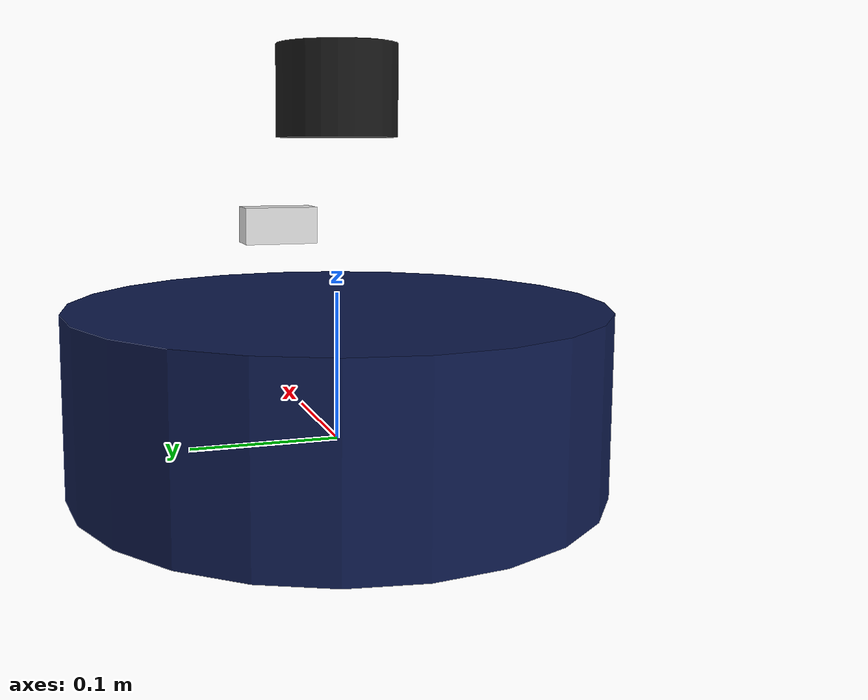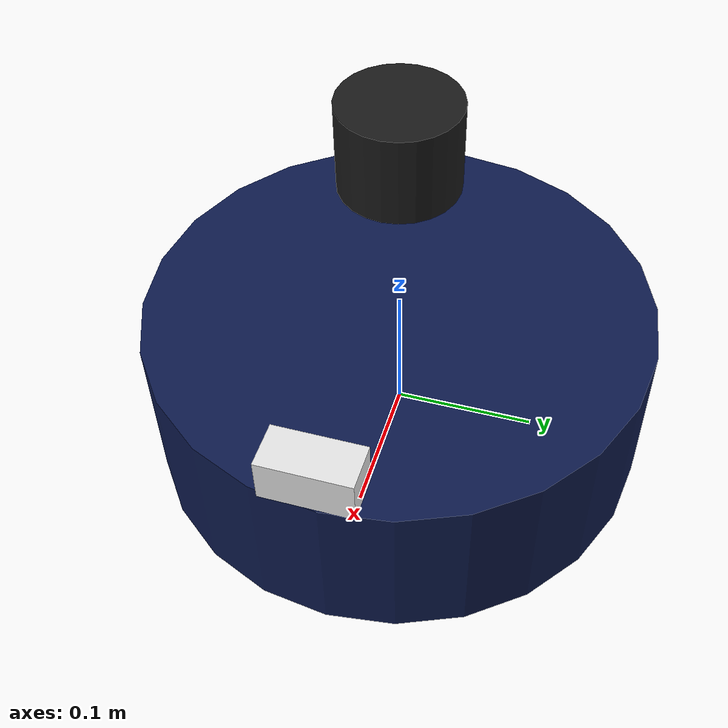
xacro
<?xml version="1.0"?>
<robot name="warehouse_robot" xmlns:xacro="http://www.ros.org/wiki/xacro">

  <!-- ═══════════════════════════════════════════════════
       PARAMETERS
  ═══════════════════════════════════════════════════ -->
  <xacro:property name="robot_mass"     value="10.0"/>
  <xacro:property name="base_radius"    value="0.18"/>
  <xacro:property name="base_height"    value="0.12"/>
  <xacro:property name="wheel_radius"   value="0.033"/>
  <xacro:property name="wheel_width"    value="0.018"/>
  <xacro:property name="wheel_sep"      value="0.28"/>
  <xacro:property name="caster_radius"  value="0.015"/>
  <xacro:property name="camera_x"       value="0.18"/>
  <xacro:property name="camera_z"       value="0.10"/>
  <xacro:property name="lidar_z"        value="0.20"/>
  <xacro:property name="PI"             value="3.14159265"/>

  <!-- ═══════════════════════════════════════════════════
       MATERIALS
  ═══════════════════════════════════════════════════ -->
  <material name="dark_blue">
    <color rgba="0.05 0.1 0.3 1.0"/>
  </material>
  <material name="black">
    <color rgba="0.1 0.1 0.1 1.0"/>
  </material>
  <material name="grey">
    <color rgba="0.5 0.5 0.5 1.0"/>
  </material>
  <material name="white">
    <color rgba="0.9 0.9 0.9 1.0"/>
  </material>

  <!-- ═══════════════════════════════════════════════════
       BASE FOOTPRINT (origin frame)
  ═══════════════════════════════════════════════════ -->
  <link name="base_footprint"/>

  <joint name="base_joint" type="fixed">
    <parent link="base_footprint"/>
    <child  link="base_link"/>
    <origin xyz="0 0 ${wheel_radius}" rpy="0 0 0"/>
  </joint>

  <!-- ═══════════════════════════════════════════════════
       BASE LINK
  ═══════════════════════════════════════════════════ -->
  <link name="base_link">
    <visual>
      <geometry>
        <cylinder radius="${base_radius}" length="${base_height}"/>
      </geometry>
      <material name="dark_blue"/>
    </visual>
    <collision>
      <geometry>
        <cylinder radius="${base_radius}" length="${base_height}"/>
      </geometry>
    </collision>
    <inertial>
      <mass value="${robot_mass}"/>
      <inertia
        ixx="${(1.0/12.0)*robot_mass*(3*base_radius*base_radius + base_height*base_height)}"
        ixy="0" ixz="0"
        iyy="${(1.0/12.0)*robot_mass*(3*base_radius*base_radius + base_height*base_height)}"
        iyz="0"
        izz="${0.5*robot_mass*base_radius*base_radius}"/>
    </inertial>
  </link>

  <!-- ═══════════════════════════════════════════════════
       WHEEL MACRO
  ═══════════════════════════════════════════════════ -->
  <xacro:macro name="wheel" params="prefix y_reflect">
    <link name="${prefix}_wheel_link">
      <visual>
        <geometry>
          <cylinder radius="${wheel_radius}" length="${wheel_width}"/>
        </geometry>
        <material name="black"/>
      </visual>
      <collision>
        <geometry>
          <cylinder radius="${wheel_radius}" length="${wheel_width}"/>
        </geometry>
      </collision>
      <inertial>
        <mass value="0.5"/>
        <inertia
          ixx="${(1.0/12.0)*0.5*(3*wheel_radius*wheel_radius + wheel_width*wheel_width)}"
          ixy="0" ixz="0"
          iyy="${(1.0/12.0)*0.5*(3*wheel_radius*wheel_radius + wheel_width*wheel_width)}"
          iyz="0"
          izz="${0.5*0.5*wheel_radius*wheel_radius}"/>
      </inertial>
    </link>

    <joint name="${prefix}_wheel_joint" type="continuous">
      <parent link="base_link"/>
      <child  link="${prefix}_wheel_link"/>
      <origin xyz="0 ${y_reflect * wheel_sep/2} ${-base_height/2 + wheel_radius}"
              rpy="${-PI/2} 0 0"/>
      <axis xyz="0 0 1"/>
      <dynamics damping="0.1" friction="0.1"/>
    </joint>
  </xacro:macro>

  <xacro:wheel prefix="left"  y_reflect=" 1"/>
  <xacro:wheel prefix="right" y_reflect="-1"/>

  <!-- ═══════════════════════════════════════════════════
       CASTER WHEEL
  ═══════════════════════════════════════════════════ -->
  <link name="caster_link">
    <visual>
      <geometry><sphere radius="${caster_radius}"/></geometry>
      <material name="grey"/>
    </visual>
    <collision>
      <geometry><sphere radius="${caster_radius}"/></geometry>
    </collision>
    <inertial>
      <mass value="0.1"/>
      <inertia ixx="0.0001" ixy="0" ixz="0" iyy="0.0001" iyz="0" izz="0.0001"/>
    </inertial>
  </link>

  <joint name="caster_joint" type="fixed">
    <parent link="base_link"/>
    <child  link="caster_link"/>
    <origin xyz="${-base_radius + caster_radius} 0 ${-base_height/2 + caster_radius}"
            rpy="0 0 0"/>
  </joint>

  <!-- ═══════════════════════════════════════════════════
       CAMERA MOUNT + LINK
  ═══════════════════════════════════════════════════ -->
  <link name="camera_link">
    <visual>
      <geometry><box size="0.03 0.06 0.03"/></geometry>
      <material name="white"/>
    </visual>
    <collision>
      <geometry><box size="0.03 0.06 0.03"/></geometry>
    </collision>
    <inertial>
      <mass value="0.05"/>
      <inertia ixx="0.0001" ixy="0" ixz="0" iyy="0.0001" iyz="0" izz="0.0001"/>
    </inertial>
  </link>

  <joint name="camera_joint" type="fixed">
    <parent link="base_link"/>
    <child  link="camera_link"/>
    <origin xyz="${camera_x} 0 ${camera_z}" rpy="0 0 0"/>
  </joint>

  <!-- Camera optical frame (standard ROS convention) -->
  <link name="camera_optical_link"/>
  <joint name="camera_optical_joint" type="fixed">
    <parent link="camera_link"/>
    <child  link="camera_optical_link"/>
    <origin xyz="0 0 0" rpy="${-PI/2} 0 ${-PI/2}"/>
  </joint>

  <!-- ═══════════════════════════════════════════════════
       LIDAR LINK
  ═══════════════════════════════════════════════════ -->
  <link name="lidar_link">
    <visual>
      <geometry><cylinder radius="0.04" length="0.06"/></geometry>
      <material name="black"/>
    </visual>
    <collision>
      <geometry><cylinder radius="0.04" length="0.06"/></geometry>
    </collision>
    <inertial>
      <mass value="0.1"/>
      <inertia ixx="0.0001" ixy="0" ixz="0" iyy="0.0001" iyz="0" izz="0.0001"/>
    </inertial>
  </link>

  <joint name="lidar_joint" type="fixed">
    <parent link="base_link"/>
    <child  link="lidar_link"/>
    <origin xyz="0 0 ${lidar_z}" rpy="0 0 0"/>
  </joint>

  <!-- IMU link -->
  <link name="imu_link"/>
  <joint name="imu_joint" type="fixed">
    <parent link="base_link"/>
    <child  link="imu_link"/>
    <origin xyz="0 0 0" rpy="0 0 0"/>
  </joint>

  <!-- ═══════════════════════════════════════════════════
       GAZEBO PLUGINS
  ═══════════════════════════════════════════════════ -->

  <!-- 1. Differential Drive Controller -->
  <gazebo>
    <plugin name="differential_drive_controller"
            filename="libgazebo_ros_diff_drive.so">
      <update_rate>30</update_rate>
      <left_joint>left_wheel_joint</left_joint>
      <right_joint>right_wheel_joint</right_joint>
      <wheel_separation>${wheel_sep}</wheel_separation>
      <wheel_diameter>${2*wheel_radius}</wheel_diameter>
      <max_wheel_torque>20</max_wheel_torque>
      <max_wheel_acceleration>1.0</max_wheel_acceleration>
      <command_topic>cmd_vel</command_topic>
      <publish_odom>true</publish_odom>
      <publish_odom_tf>true</publish_odom_tf>
      <publish_wheel_tf>false</publish_wheel_tf>
      <odometry_topic>odom</odometry_topic>
      <odometry_frame>odom</odometry_frame>
      <robot_base_frame>base_footprint</robot_base_frame>
      <odometry_source>world</odometry_source>
      <ros>
        <remapping>cmd_vel:=cmd_vel</remapping>
        <remapping>odom:=odom</remapping>
      </ros>
    </plugin>
  </gazebo>

  <!-- 2. RGB Camera Plugin -->
  <gazebo reference="camera_link">
    <sensor name="rgb_camera" type="camera">
      <update_rate>30.0</update_rate>
      <always_on>true</always_on>
      <visualize>true</visualize>
      <camera name="rgb_camera">
        <horizontal_fov>1.3962634</horizontal_fov>
        <image>
          <width>640</width>
          <height>480</height>
          <format>R8G8B8</format>
        </image>
        <clip>
          <near>0.05</near>
          <far>8.0</far>
        </clip>
        <noise>
          <type>gaussian</type>
          <mean>0.0</mean>
          <stddev>0.007</stddev>
        </noise>
        <distortion>
          <k1>0.0</k1><k2>0.0</k2><k3>0.0</k3>
          <p1>0.0</p1><p2>0.0</p2>
          <center>0.5 0.5</center>
        </distortion>
      </camera>
      <plugin name="camera_controller" filename="libgazebo_ros_camera.so">
        <ros>
          <remapping>image_raw:=image_raw</remapping>
          <remapping>camera_info:=camera_info</remapping>
        </ros>
        <camera_name>rgb_camera</camera_name>
        <frame_name>camera_optical_link</frame_name>
        <hack_baseline>0.07</hack_baseline>
      </plugin>
    </sensor>

    <!-- Contact sensor for emergency stop -->
    <sensor name="contact_sensor" type="contact">
      <always_on>true</always_on>
      <update_rate>10.0</update_rate>
      <contact>
        <collision>base_link_collision</collision>
      </contact>
      <plugin name="contact_controller" filename="libgazebo_ros_bumper.so">
        <ros>
          <remapping>bumper_states:=contact_states</remapping>
        </ros>
        <frame_name>base_link</frame_name>
      </plugin>
    </sensor>
  </gazebo>

  <!-- 3. 2D LiDAR Plugin (RPLiDAR A1 equivalent) -->
  <gazebo reference="lidar_link">
    <sensor name="lidar" type="ray">
      <always_on>true</always_on>
      <visualize>true</visualize>
      <update_rate>10</update_rate>
      <ray>
        <scan>
          <horizontal>
            <samples>360</samples>
            <resolution>1</resolution>
            <min_angle>-3.14159</min_angle>
            <max_angle> 3.14159</max_angle>
          </horizontal>
        </scan>
        <range>
          <min>0.12</min>
          <max>3.5</max>
          <resolution>0.015</resolution>
        </range>
        <noise>
          <type>gaussian</type>
          <mean>0.0</mean>
          <stddev>0.01</stddev>
        </noise>
      </ray>
      <plugin name="lidar_controller" filename="libgazebo_ros_ray_sensor.so">
        <ros>
          <remapping>~/out:=scan</remapping>
        </ros>
        <output_type>sensor_msgs/LaserScan</output_type>
        <frame_name>lidar_link</frame_name>
      </plugin>
    </sensor>
  </gazebo>

  <!-- 4. IMU Plugin -->
  <gazebo reference="imu_link">
    <sensor name="imu_sensor" type="imu">
      <always_on>true</always_on>
      <update_rate>100</update_rate>
      <visualize>false</visualize>
      <imu>
        <angular_velocity>
          <x><noise type="gaussian"><mean>0.0</mean><stddev>2e-4</stddev></noise></x>
          <y><noise type="gaussian"><mean>0.0</mean><stddev>2e-4</stddev></noise></y>
          <z><noise type="gaussian"><mean>0.0</mean><stddev>2e-4</stddev></noise></z>
        </angular_velocity>
        <linear_acceleration>
          <x><noise type="gaussian"><mean>0.0</mean><stddev>1.7e-2</stddev></noise></x>
          <y><noise type="gaussian"><mean>0.0</mean><stddev>1.7e-2</stddev></noise></y>
          <z><noise type="gaussian"><mean>0.0</mean><stddev>1.7e-2</stddev></noise></z>
        </linear_acceleration>
      </imu>
      <plugin name="imu_controller" filename="libgazebo_ros_imu_sensor.so">
        <ros>
          <remapping>~/out:=imu</remapping>
        </ros>
        <initial_orientation_as_reference>false</initial_orientation_as_reference>
      </plugin>
    </sensor>
  </gazebo>

  <!-- 5. Material colors in Gazebo -->
  <gazebo reference="base_link">
    <material>Gazebo/DarkBlue</material>
    <mu1>0.2</mu1><mu2>0.2</mu2>
  </gazebo>
  <gazebo reference="left_wheel_link">
    <material>Gazebo/Black</material>
    <mu1>1.0</mu1><mu2>1.0</mu2>
  </gazebo>
  <gazebo reference="right_wheel_link">
    <material>Gazebo/Black</material>
    <mu1>1.0</mu1><mu2>1.0</mu2>
  </gazebo>
  <gazebo reference="caster_link">
    <material>Gazebo/Grey</material>
    <mu1>0.001</mu1><mu2>0.001</mu2>
  </gazebo>

</robot>
